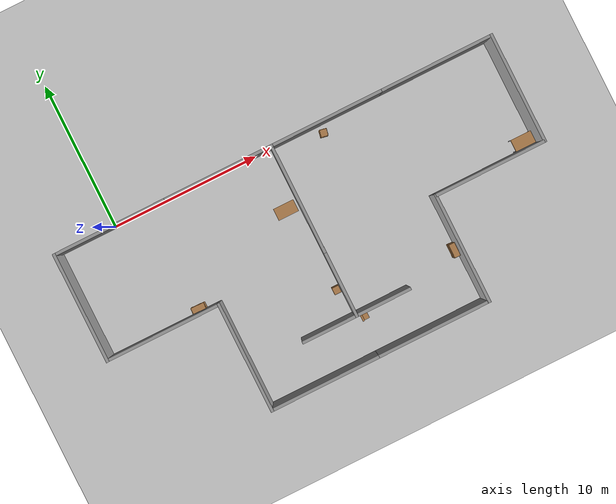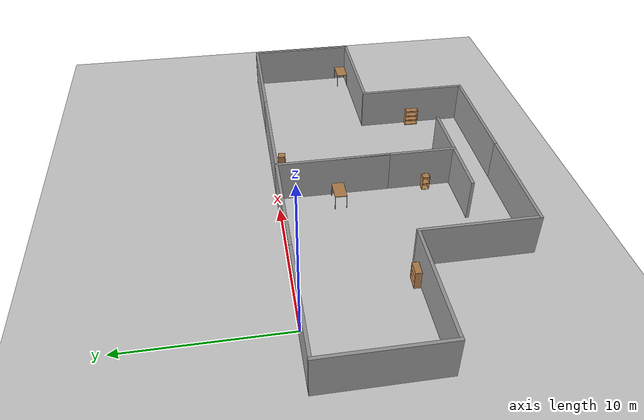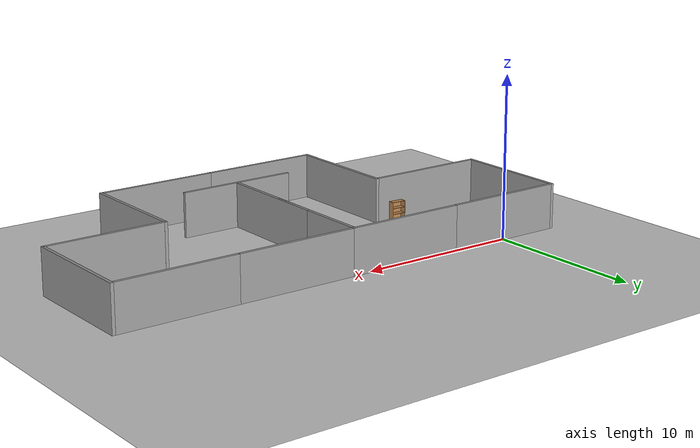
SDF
<sdf version="1.6">
 <world name="default">
  <light name="sun" type="directional">
   <pose>0 0 10 0 -0 0</pose>
   <diffuse>0.8 0.8 0.8 1</diffuse>
   <specular>0.1 0.1 0.1 1</specular>
   <attenuation>
    <range>1000</range>
    <constant>0.9</constant>
    <linear>0.01</linear>
    <quadratic>0.001</quadratic>
   </attenuation>
   <direction>-0.5 0.5 -1</direction>
  </light>
  <model name="ground_plane">
   <static>1</static>
   <link name="link">
    <collision name="collision">
     <geometry><plane><normal>0 0 1</normal><size>100 100</size></plane></geometry>
     <surface><friction><ode><mu>100</mu><mu2>50</mu2></ode></friction></surface>
    </collision>
    <visual name="visual">
     <cast_shadows>0</cast_shadows>
     <geometry><plane><normal>0 0 1</normal><size>100 100</size></plane></geometry>
     <material>
      <script><uri>file://media/materials/scripts/gazebo.material</uri><name>Gazebo/Grey</name></script>
     </material>
    </visual>
   </link>
  </model>
  <gravity>0 0 -9.8</gravity>
  <magnetic_field>6e-06 2.3e-05 -4.2e-05</magnetic_field>
  <atmosphere type="adiabatic"/>
  <physics name="default_physics" default="0" type="ode">
   <max_step_size>0.001</max_step_size>
   <real_time_factor>1</real_time_factor>
   <real_time_update_rate>1000</real_time_update_rate>
  </physics>
  <scene><ambient>0.4 0.4 0.4 1</ambient><background>0.7 0.7 0.7 1</background><shadows>1</shadows></scene>
  <spherical_coordinates>
   <surface_model>EARTH_WGS84</surface_model>
   <latitude_deg>0</latitude_deg>
   <longitude_deg>0</longitude_deg>
   <elevation>0</elevation>
   <heading_deg>0</heading_deg>
  </spherical_coordinates>
  <model name="grey_wall">
   <static>1</static>
   <link name="link">
    <pose>0 0 1.4 0 -0 0</pose>
    <collision name="collision"><geometry><box><size>7.5 0.2 2.8</size></box></geometry></collision>
    <visual name="visual">
     <cast_shadows>0</cast_shadows>
     <geometry><box><size>7.5 0.2 2.8</size></box></geometry>
     <material>
      <script>
       <uri>model://grey_wall/materials/scripts</uri>
       <uri>model://grey_wall/materials/textures</uri>
       <name>vrc/grey_wall</name>
      </script>
     </material>
    </visual>
   </link>
  </model>
  <model name="grey_wall_0">
   <static>1</static>
   <link name="link">
    <pose>0 0 1.4 0 -0 0</pose>
    <collision name="collision"><geometry><box><size>7.5 0.2 2.8</size></box></geometry></collision>
    <visual name="visual">
     <cast_shadows>0</cast_shadows>
     <geometry><box><size>7.5 0.2 2.8</size></box></geometry>
     <material>
      <script>
       <uri>model://grey_wall/materials/scripts</uri>
       <uri>model://grey_wall/materials/textures</uri>
       <name>vrc/grey_wall_tile</name>
      </script>
     </material>
    </visual>
   </link>
   <pose>-3.85002 -3.65 0 0 0 -1.57079</pose>
  </model>
  <model name="grey_wall_1">
   <static>1</static>
   <link name="link">
    <pose>0 0 1.4 0 -0 0</pose>
    <collision name="collision"><geometry><box><size>7.5 0.2 2.8</size></box></geometry></collision>
    <visual name="visual">
     <cast_shadows>0</cast_shadows>
     <geometry><box><size>7.5 0.2 2.8</size></box></geometry>
     <material>
      <script>
       <uri>model://grey_wall/materials/scripts</uri>
       <uri>model://grey_wall/materials/textures</uri>
       <name>vrc/grey_wall_square</name>
      </script>
     </material>
    </visual>
   </link>
   <pose>0 -7.3 0 0 -0 0</pose>
  </model>
  <model name="grey_wall_2">
   <static>1</static>
   <link name="link">
    <pose>0 0 1.4 0 -0 0</pose>
    <collision name="collision"><geometry><box><size>7.5 0.2 2.8</size></box></geometry></collision>
    <visual name="visual">
     <cast_shadows>0</cast_shadows>
     <geometry><box><size>7.5 0.2 2.8</size></box></geometry>
     <material>
      <script>
       <uri>model://grey_wall/materials/scripts</uri>
       <uri>model://grey_wall/materials/textures</uri>
       <name>vrc/grey_wall_triangle</name>
      </script>
     </material>
    </visual>
   </link>
   <pose>7.5 0 0 0 -0 0</pose>
  </model>
  <model name="grey_wall_2_clone">
   <static>1</static>
   <link name="link">
    <pose>0 0 1.4 0 -0 0</pose>
    <collision name="collision"><geometry><box><size>7.5 0.2 2.8</size></box></geometry></collision>
    <visual name="visual">
     <cast_shadows>0</cast_shadows>
     <geometry><box><size>7.5 0.2 2.8</size></box></geometry>
     <material>
      <script>
       <uri>model://grey_wall/materials/scripts</uri>
       <uri>model://grey_wall/materials/textures</uri>
       <name>vrc/grey_wall_tile</name>
      </script>
     </material>
    </visual>
   </link>
   <pose>3.85002 -10.95 0 0 -0 1.57079</pose>
  </model>
  <model name="grey_wall_4">
   <static>1</static>
   <link name="link">
    <pose>0 0 1.4 0 -0 0</pose>
    <collision name="collision"><geometry><box><size>7.5 0.2 2.8</size></box></geometry></collision>
    <visual name="visual">
     <cast_shadows>0</cast_shadows>
     <geometry><box><size>7.5 0.2 2.8</size></box></geometry>
     <material>
      <script>
       <uri>model://grey_wall/materials/scripts</uri>
       <uri>model://grey_wall/materials/textures</uri>
       <name>vrc/grey_wall_design</name>
      </script>
     </material>
    </visual>
   </link>
   <pose>7.5 -14.6 0 0 -0 0</pose>
  </model>
  <model name="grey_wall_5">
   <static>1</static>
   <link name="link">
    <pose>0 0 1.4 0 -0 0</pose>
    <collision name="collision"><geometry><box><size>7.5 0.2 2.8</size></box></geometry></collision>
    <visual name="visual">
     <cast_shadows>0</cast_shadows>
     <geometry><box><size>7.5 0.2 2.8</size></box></geometry>
     <material>
      <script>
       <uri>model://grey_wall/materials/scripts</uri>
       <uri>model://grey_wall/materials/textures</uri>
       <name>vrc/grey_wall</name>
      </script>
     </material>
    </visual>
   </link>
   <pose>15 -14.6 0 0 -0 0</pose>
  </model>
  <model name="grey_wall_6">
   <static>1</static>
   <link name="link">
    <pose>0 0 1.4 0 -0 0</pose>
    <collision name="collision"><geometry><box><size>7.5 0.2 2.8</size></box></geometry></collision>
    <visual name="visual">
     <cast_shadows>0</cast_shadows>
     <geometry><box><size>7.5 0.2 2.8</size></box></geometry>
     <material>
      <script>
       <uri>model://grey_wall/materials/scripts</uri>
       <uri>model://grey_wall/materials/textures</uri>
       <name>vrc/grey_wall</name>
      </script>
     </material>
    </visual>
   </link>
   <pose>11.1458 -3.65011 0 0 -0 1.57079</pose>
  </model>
  <model name="grey_wall_7">
   <static>1</static>
   <link name="link">
    <pose>0 0 1.4 0 -0 0</pose>
    <collision name="collision"><geometry><box><size>7.5 0.2 2.8</size></box></geometry></collision>
    <visual name="visual">
     <cast_shadows>0</cast_shadows>
     <geometry><box><size>7.5 0.2 2.8</size></box></geometry>
     <material>
      <script>
       <uri>model://grey_wall/materials/scripts</uri>
       <uri>model://grey_wall/materials/textures</uri>
       <name>vrc/grey_wall_tile</name>
      </script>
     </material>
    </visual>
   </link>
   <pose>15 0 0 0 -0 0</pose>
  </model>
  <model name="grey_wall_5_clone">
   <static>1</static>
   <link name="link">
    <pose>0 0 1.4 0 -0 0</pose>
    <collision name="collision"><geometry><box><size>7.5 0.2 2.8</size></box></geometry></collision>
    <visual name="visual">
     <cast_shadows>0</cast_shadows>
     <geometry><box><size>7.5 0.2 2.8</size></box></geometry>
     <material>
      <script>
       <uri>model://grey_wall/materials/scripts</uri>
       <uri>model://grey_wall/materials/textures</uri>
       <name>vrc/grey_wall_stone</name>
      </script>
     </material>
    </visual>
   </link>
   <pose>22.606 -7.30022 0 0 -0 0</pose>
  </model>
  <model name="grey_wall_5_clone_clone">
   <static>1</static>
   <link name="link">
    <pose>0 0 1.4 0 -0 0</pose>
    <collision name="collision"><geometry><box><size>7.5 0.2 2.8</size></box></geometry></collision>
    <visual name="visual">
     <cast_shadows>0</cast_shadows>
     <geometry><box><size>7.5 0.2 2.8</size></box></geometry>
     <material>
      <script>
       <uri>model://grey_wall/materials/scripts</uri>
       <uri>model://grey_wall/materials/textures</uri>
       <name>vrc/grey_wall_triangle</name>
      </script>
     </material>
    </visual>
   </link>
   <pose>22.5 0 0 0 -0 0</pose>
  </model>
  <model name="grey_wall_6_clone">
   <static>1</static>
   <link name="link">
    <pose>0 0 1.4 0 -0 0</pose>
    <collision name="collision"><geometry><box><size>7.5 0.2 2.8</size></box></geometry></collision>
    <visual name="visual">
     <cast_shadows>0</cast_shadows>
     <geometry><box><size>7.5 0.2 2.8</size></box></geometry>
     <material>
      <script>
       <uri>model://grey_wall/materials/scripts</uri>
       <uri>model://grey_wall/materials/textures</uri>
       <name>vrc/grey_wall_square</name>
      </script>
     </material>
    </visual>
   </link>
   <pose>18.8542 -10.9499 0 0 -0 1.57191</pose>
  </model>
  <model name="grey_wall_6_clone_0">
   <static>1</static>
   <link name="link">
    <pose>0 0 1.4 0 -0 0</pose>
    <collision name="collision"><geometry><box><size>7.5 0.2 2.8</size></box></geometry></collision>
    <visual name="visual">
     <cast_shadows>0</cast_shadows>
     <geometry><box><size>7.5 0.2 2.8</size></box></geometry>
     <material>
      <script>
       <uri>model://grey_wall/materials/scripts</uri>
       <uri>model://grey_wall/materials/textures</uri>
       <name>vrc/grey_wall_design</name>
      </script>
     </material>
    </visual>
   </link>
   <pose>26.3542 -3.65011 0 0 -0 1.57191</pose>
  </model>
  <model name="grey_wall_6_clone_0_clone">
   <static>1</static>
   <link name="link">
    <pose>0 0 1.4 0 -0 0</pose>
    <collision name="collision"><geometry><box><size>7.5 0.2 2.8</size></box></geometry></collision>
    <visual name="visual">
     <cast_shadows>0</cast_shadows>
     <geometry><box><size>7.5 0.2 2.8</size></box></geometry>
     <material>
      <script>
       <uri>model://grey_wall/materials/scripts</uri>
       <uri>model://grey_wall/materials/textures</uri>
       <name>vrc/grey_wall</name>
      </script>
     </material>
    </visual>
   </link>
   <pose>11.1458 -8.07245 0 0 -0 1.57079</pose>
  </model>
  <model name="grey_wall_5_clone_0">
   <static>1</static>
   <link name="link">
    <pose>0 0 1.4 0 -0 0</pose>
    <collision name="collision"><geometry><box><size>7.5 0.2 2.8</size></box></geometry></collision>
    <visual name="visual">
     <cast_shadows>0</cast_shadows>
     <geometry><box><size>7.5 0.2 2.8</size></box></geometry>
     <material>
      <script>
       <uri>model://grey_wall/materials/scripts</uri>
       <uri>model://grey_wall/materials/textures</uri>
       <name>vrc/grey_wall_tile</name>
      </script>
     </material>
    </visual>
   </link>
   <pose>11.1458 -11.7225 0 0 -0 0</pose>
  </model>
  <model name="cabinet">
   <static>1</static>
   <link name="cabinet_bottom_plate">
    <inertial>
     <pose>0 0 -1 0 -0 0</pose>
     <inertia><ixx>2.05</ixx><ixy>0</ixy><ixz>0</ixz><iyy>2.05</iyy><iyz>0</iyz><izz>2.05</izz></inertia>
     <mass>25</mass>
    </inertial>
    <collision name="cabinet_bottom_plate_geom">
     <pose>0 0 0.01 0 -0 0</pose>
     <geometry><box><size>0.45 0.45 0.02</size></box></geometry>
    </collision>
    <visual name="cabinet_bottom_plate_geom_visual">
     <pose>0 0 0.01 0 -0 0</pose>
     <geometry><box><size>0.45 0.45 0.02</size></box></geometry>
     <material>
      <script><uri>file://media/materials/scripts/gazebo.material</uri><name>Gazebo/Wood</name></script>
     </material>
    </visual>
    <collision name="cabinet_bottom_plate_geom_cabinet_back_plate">
     <pose>0.235 0 0.51 0 -0 0</pose>
     <geometry><box><size>0.02 0.45 1.02</size></box></geometry>
    </collision>
    <visual name="cabinet_bottom_plate_geom_cabinet_back_plate_visual">
     <pose>0.235 0 0.51 0 -0 0</pose>
     <geometry><box><size>0.02 0.45 1.02</size></box></geometry>
     <material>
      <script><uri>file://media/materials/scripts/gazebo.material</uri><name>Gazebo/Wood</name></script>
     </material>
    </visual>
    <collision name="cabinet_bottom_plate_geom_cabinet_left_plate">
     <pose>0 0.235 0.51 0 -0 0</pose>
     <geometry><box><size>0.45 0.02 1.02</size></box></geometry>
    </collision>
    <visual name="cabinet_bottom_plate_geom_cabinet_left_plate_visual">
     <pose>0 0.235 0.51 0 -0 0</pose>
     <geometry><box><size>0.45 0.02 1.02</size></box></geometry>
     <material>
      <script><uri>file://media/materials/scripts/gazebo.material</uri><name>Gazebo/Wood</name></script>
     </material>
    </visual>
    <collision name="cabinet_bottom_plate_geom_cabinet_middle_plate">
     <pose>0 0 0.51 0 -0 0</pose>
     <geometry><box><size>0.45 0.45 0.02</size></box></geometry>
    </collision>
    <visual name="cabinet_bottom_plate_geom_cabinet_middle_plate_visual">
     <pose>0 0 0.51 0 -0 0</pose>
     <geometry><box><size>0.45 0.45 0.02</size></box></geometry>
     <material>
      <script><uri>file://media/materials/scripts/gazebo.material</uri><name>Gazebo/Wood</name></script>
     </material>
    </visual>
    <collision name="cabinet_bottom_plate_geom_cabinet_right_plate">
     <pose>0 -0.235 0.51 0 -0 0</pose>
     <geometry><box><size>0.45 0.02 1.02</size></box></geometry>
    </collision>
    <visual name="cabinet_bottom_plate_geom_cabinet_right_plate_visual">
     <pose>0 -0.235 0.51 0 -0 0</pose>
     <geometry><box><size>0.45 0.02 1.02</size></box></geometry>
     <material>
      <script><uri>file://media/materials/scripts/gazebo.material</uri><name>Gazebo/Wood</name></script>
     </material>
    </visual>
    <collision name="cabinet_bottom_plate_geom_cabinet_top_plate">
     <pose>0 0 1.01 0 -0 0</pose>
     <geometry><box><size>0.45 0.45 0.02</size></box></geometry>
    </collision>
    <visual name="cabinet_bottom_plate_geom_cabinet_top_plate_visual">
     <pose>0 0 1.01 0 -0 0</pose>
     <geometry><box><size>0.45 0.45 0.02</size></box></geometry>
     <material>
      <script><uri>file://media/materials/scripts/gazebo.material</uri><name>Gazebo/Wood</name></script>
     </material>
    </visual>
   </link>
   <pose>10.7739 -9.86714 0 0 -0 0</pose>
  </model>
  <model name="bookshelf">
   <static>1</static>
   <link name="link">
    <inertial><mass>1</mass></inertial>
    <collision name="back">
     <pose>0 0.005 0.6 0 -0 0</pose>
     <geometry><box><size>0.9 0.01 1.2</size></box></geometry>
    </collision>
    <visual name="visual1">
     <pose>0 0.005 0.6 0 -0 0</pose>
     <geometry><box><size>0.9 0.01 1.2</size></box></geometry>
     <material>
      <script><uri>file://media/materials/scripts/gazebo.material</uri><name>Gazebo/Wood</name></script>
     </material>
    </visual>
    <collision name="left_side">
     <pose>0.45 -0.195 0.6 0 -0 0</pose>
     <geometry><box><size>0.02 0.4 1.2</size></box></geometry>
    </collision>
    <visual name="visual2">
     <pose>0.45 -0.195 0.6 0 -0 0</pose>
     <geometry><box><size>0.02 0.4 1.2</size></box></geometry>
     <material>
      <script><uri>file://media/materials/scripts/gazebo.material</uri><name>Gazebo/Wood</name></script>
     </material>
    </visual>
    <collision name="right_side">
     <pose>-0.45 -0.195 0.6 0 -0 0</pose>
     <geometry><box><size>0.02 0.4 1.2</size></box></geometry>
    </collision>
    <visual name="visual3">
     <pose>-0.45 -0.195 0.6 0 -0 0</pose>
     <geometry><box><size>0.02 0.4 1.2</size></box></geometry>
     <material>
      <script><uri>file://media/materials/scripts/gazebo.material</uri><name>Gazebo/Wood</name></script>
     </material>
    </visual>
    <collision name="bottom">
     <pose>0 -0.195 0.03 0 -0 0</pose>
     <geometry><box><size>0.88 0.4 0.06</size></box></geometry>
    </collision>
    <visual name="visual4">
     <pose>0 -0.195 0.03 0 -0 0</pose>
     <geometry><box><size>0.88 0.4 0.06</size></box></geometry>
     <material>
      <script><uri>file://media/materials/scripts/gazebo.material</uri><name>Gazebo/Wood</name></script>
     </material>
    </visual>
    <collision name="top">
     <pose>0 -0.195 1.19 0 -0 0</pose>
     <geometry><box><size>0.88 0.4 0.02</size></box></geometry>
    </collision>
    <visual name="visual5">
     <pose>0 -0.195 1.19 0 -0 0</pose>
     <geometry><box><size>0.88 0.4 0.02</size></box></geometry>
     <material>
      <script><uri>file://media/materials/scripts/gazebo.material</uri><name>Gazebo/Wood</name></script>
     </material>
    </visual>
    <collision name="low_shelf">
     <pose>0 -0.195 0.43 0 -0 0</pose>
     <geometry><box><size>0.88 0.4 0.02</size></box></geometry>
    </collision>
    <visual name="visual6">
     <pose>0 -0.195 0.43 0 -0 0</pose>
     <geometry><box><size>0.88 0.4 0.02</size></box></geometry>
     <material>
      <script><uri>file://media/materials/scripts/gazebo.material</uri><name>Gazebo/Wood</name></script>
     </material>
    </visual>
    <collision name="high_shelf">
     <pose>0 -0.195 0.8 0 -0 0</pose>
     <geometry><box><size>0.88 0.4 0.02</size></box></geometry>
    </collision>
    <visual name="visual7">
     <pose>0 -0.195 0.8 0 -0 0</pose>
     <geometry><box><size>0.88 0.4 0.02</size></box></geometry>
     <material>
      <script><uri>file://media/materials/scripts/gazebo.material</uri><name>Gazebo/Wood</name></script>
     </material>
    </visual>
   </link>
   <pose>18.7309 -10.9537 0 0 0 -1.59064</pose>
  </model>
  <model name="table">
   <static>0</static>
   <link name="link">
    <collision name="surface">
     <pose>0 0 1 0 -0 0</pose>
     <geometry><box><size>1.5 0.8 0.03</size></box></geometry>
     <surface><friction><ode><mu>0.6</mu><mu2>0.6</mu2></ode></friction></surface>
    </collision>
    <visual name="visual1">
     <pose>0 0 1 0 -0 0</pose>
     <geometry><box><size>1.4 0.8 0.04</size></box></geometry>
     <material>
      <script><uri>file://media/materials/scripts/gazebo.material</uri><name>Gazebo/Wood</name></script>
     </material>
    </visual>
    <collision name="front_left_leg">
     <pose>0.68 0.38 0.5 0 -0 0</pose>
     <geometry><cylinder><radius>0.02</radius><length>1</length></cylinder></geometry>
    </collision>
    <visual name="front_left_leg">
     <pose>0.68 0.38 0.5 0 -0 0</pose>
     <geometry><cylinder><radius>0.02</radius><length>1</length></cylinder></geometry>
     <material>
      <script><uri>file://media/materials/scripts/gazebo.material</uri><name>Gazebo/Grey</name></script>
     </material>
    </visual>
    <collision name="front_right_leg">
     <pose>0.68 -0.38 0.5 0 -0 0</pose>
     <geometry><cylinder><radius>0.02</radius><length>1</length></cylinder></geometry>
    </collision>
    <visual name="front_right_leg">
     <pose>0.68 -0.38 0.5 0 -0 0</pose>
     <geometry><cylinder><radius>0.02</radius><length>1</length></cylinder></geometry>
     <material>
      <script><uri>file://media/materials/scripts/gazebo.material</uri><name>Gazebo/Grey</name></script>
     </material>
    </visual>
    <collision name="back_right_leg">
     <pose>-0.68 -0.38 0.5 0 -0 0</pose>
     <geometry><cylinder><radius>0.02</radius><length>1</length></cylinder></geometry>
    </collision>
    <visual name="back_right_leg">
     <pose>-0.68 -0.38 0.5 0 -0 0</pose>
     <geometry><cylinder><radius>0.02</radius><length>1</length></cylinder></geometry>
     <material>
      <script><uri>file://media/materials/scripts/gazebo.material</uri><name>Gazebo/Grey</name></script>
     </material>
    </visual>
    <collision name="back_left_leg">
     <pose>-0.68 0.38 0.5 0 -0 0</pose>
     <geometry><cylinder><radius>0.02</radius><length>1</length></cylinder></geometry>
    </collision>
    <visual name="back_left_leg">
     <pose>-0.68 0.38 0.5 0 -0 0</pose>
     <geometry><cylinder><radius>0.02</radius><length>1</length></cylinder></geometry>
     <material>
      <script><uri>file://media/materials/scripts/gazebo.material</uri><name>Gazebo/Grey</name></script>
     </material>
    </visual>
    <inertial>
     <inertia><ixx>1</ixx><ixy>0</ixy><ixz>0</ixz><iyy>1</iyy><iyz>0</iyz><izz>1</izz></inertia>
     <mass>1</mass>
    </inertial>
   </link>
   <pose>25.5169 -6.76524 0.006526 -0 -0.009323 0.001114</pose>
  </model>
  <model name="cabinet_0">
   <static>1</static>
   <link name="cabinet_bottom_plate">
    <inertial>
     <pose>0 0 -1 0 -0 0</pose>
     <inertia><ixx>2.05</ixx><ixy>0</ixy><ixz>0</ixz><iyy>2.05</iyy><iyz>0</iyz><izz>2.05</izz></inertia>
     <mass>25</mass>
    </inertial>
    <collision name="cabinet_bottom_plate_geom">
     <pose>0 0 0.01 0 -0 0</pose>
     <geometry><box><size>0.45 0.45 0.02</size></box></geometry>
    </collision>
    <visual name="cabinet_bottom_plate_geom_visual">
     <pose>0 0 0.01 0 -0 0</pose>
     <geometry><box><size>0.45 0.45 0.02</size></box></geometry>
     <material>
      <script><uri>file://media/materials/scripts/gazebo.material</uri><name>Gazebo/Wood</name></script>
     </material>
    </visual>
    <collision name="cabinet_bottom_plate_geom_cabinet_back_plate">
     <pose>0.235 0 0.51 0 -0 0</pose>
     <geometry><box><size>0.02 0.45 1.02</size></box></geometry>
    </collision>
    <visual name="cabinet_bottom_plate_geom_cabinet_back_plate_visual">
     <pose>0.235 0 0.51 0 -0 0</pose>
     <geometry><box><size>0.02 0.45 1.02</size></box></geometry>
     <material>
      <script><uri>file://media/materials/scripts/gazebo.material</uri><name>Gazebo/Wood</name></script>
     </material>
    </visual>
    <collision name="cabinet_bottom_plate_geom_cabinet_left_plate">
     <pose>0 0.235 0.51 0 -0 0</pose>
     <geometry><box><size>0.45 0.02 1.02</size></box></geometry>
    </collision>
    <visual name="cabinet_bottom_plate_geom_cabinet_left_plate_visual">
     <pose>0 0.235 0.51 0 -0 0</pose>
     <geometry><box><size>0.45 0.02 1.02</size></box></geometry>
     <material>
      <script><uri>file://media/materials/scripts/gazebo.material</uri><name>Gazebo/Wood</name></script>
     </material>
    </visual>
    <collision name="cabinet_bottom_plate_geom_cabinet_middle_plate">
     <pose>0 0 0.51 0 -0 0</pose>
     <geometry><box><size>0.45 0.45 0.02</size></box></geometry>
    </collision>
    <visual name="cabinet_bottom_plate_geom_cabinet_middle_plate_visual">
     <pose>0 0 0.51 0 -0 0</pose>
     <geometry><box><size>0.45 0.45 0.02</size></box></geometry>
     <material>
      <script><uri>file://media/materials/scripts/gazebo.material</uri><name>Gazebo/Wood</name></script>
     </material>
    </visual>
    <collision name="cabinet_bottom_plate_geom_cabinet_right_plate">
     <pose>0 -0.235 0.51 0 -0 0</pose>
     <geometry><box><size>0.45 0.02 1.02</size></box></geometry>
    </collision>
    <visual name="cabinet_bottom_plate_geom_cabinet_right_plate_visual">
     <pose>0 -0.235 0.51 0 -0 0</pose>
     <geometry><box><size>0.45 0.02 1.02</size></box></geometry>
     <material>
      <script><uri>file://media/materials/scripts/gazebo.material</uri><name>Gazebo/Wood</name></script>
     </material>
    </visual>
    <collision name="cabinet_bottom_plate_geom_cabinet_top_plate">
     <pose>0 0 1.01 0 -0 0</pose>
     <geometry><box><size>0.45 0.45 0.02</size></box></geometry>
    </collision>
    <visual name="cabinet_bottom_plate_geom_cabinet_top_plate_visual">
     <pose>0 0 1.01 0 -0 0</pose>
     <geometry><box><size>0.45 0.45 0.02</size></box></geometry>
     <material>
      <script><uri>file://media/materials/scripts/gazebo.material</uri><name>Gazebo/Wood</name></script>
     </material>
    </visual>
   </link>
   <pose>14.5023 -0.641824 0 0 -0 1.37831</pose>
  </model>
  <model name="bookshelf_clone">
   <static>1</static>
   <link name="link">
    <inertial><mass>1</mass></inertial>
    <collision name="back">
     <pose>0 0.005 0.6 0 -0 0</pose>
     <geometry><box><size>0.9 0.01 1.2</size></box></geometry>
    </collision>
    <visual name="visual1">
     <pose>0 0.005 0.6 0 -0 0</pose>
     <geometry><box><size>0.9 0.01 1.2</size></box></geometry>
     <material>
      <script><uri>file://media/materials/scripts/gazebo.material</uri><name>Gazebo/Wood</name></script>
     </material>
    </visual>
    <collision name="left_side">
     <pose>0.45 -0.195 0.6 0 -0 0</pose>
     <geometry><box><size>0.02 0.4 1.2</size></box></geometry>
    </collision>
    <visual name="visual2">
     <pose>0.45 -0.195 0.6 0 -0 0</pose>
     <geometry><box><size>0.02 0.4 1.2</size></box></geometry>
     <material>
      <script><uri>file://media/materials/scripts/gazebo.material</uri><name>Gazebo/Wood</name></script>
     </material>
    </visual>
    <collision name="right_side">
     <pose>-0.45 -0.195 0.6 0 -0 0</pose>
     <geometry><box><size>0.02 0.4 1.2</size></box></geometry>
    </collision>
    <visual name="visual3">
     <pose>-0.45 -0.195 0.6 0 -0 0</pose>
     <geometry><box><size>0.02 0.4 1.2</size></box></geometry>
     <material>
      <script><uri>file://media/materials/scripts/gazebo.material</uri><name>Gazebo/Wood</name></script>
     </material>
    </visual>
    <collision name="bottom">
     <pose>0 -0.195 0.03 0 -0 0</pose>
     <geometry><box><size>0.88 0.4 0.06</size></box></geometry>
    </collision>
    <visual name="visual4">
     <pose>0 -0.195 0.03 0 -0 0</pose>
     <geometry><box><size>0.88 0.4 0.06</size></box></geometry>
     <material>
      <script><uri>file://media/materials/scripts/gazebo.material</uri><name>Gazebo/Wood</name></script>
     </material>
    </visual>
    <collision name="top">
     <pose>0 -0.195 1.19 0 -0 0</pose>
     <geometry><box><size>0.88 0.4 0.02</size></box></geometry>
    </collision>
    <visual name="visual5">
     <pose>0 -0.195 1.19 0 -0 0</pose>
     <geometry><box><size>0.88 0.4 0.02</size></box></geometry>
     <material>
      <script><uri>file://media/materials/scripts/gazebo.material</uri><name>Gazebo/Wood</name></script>
     </material>
    </visual>
    <collision name="low_shelf">
     <pose>0 -0.195 0.43 0 -0 0</pose>
     <geometry><box><size>0.88 0.4 0.02</size></box></geometry>
    </collision>
    <visual name="visual6">
     <pose>0 -0.195 0.43 0 -0 0</pose>
     <geometry><box><size>0.88 0.4 0.02</size></box></geometry>
     <material>
      <script><uri>file://media/materials/scripts/gazebo.material</uri><name>Gazebo/Wood</name></script>
     </material>
    </visual>
    <collision name="high_shelf">
     <pose>0 -0.195 0.8 0 -0 0</pose>
     <geometry><box><size>0.88 0.4 0.02</size></box></geometry>
    </collision>
    <visual name="visual7">
     <pose>0 -0.195 0.8 0 -0 0</pose>
     <geometry><box><size>0.88 0.4 0.02</size></box></geometry>
     <material>
      <script><uri>file://media/materials/scripts/gazebo.material</uri><name>Gazebo/Wood</name></script>
     </material>
    </visual>
   </link>
   <pose>2.47351 -7.17558 0 0 -0 3.11023</pose>
  </model>
  <model name="wooden_case">
   <link name="base">
    <pose>0 0 0.024 0 -0 0</pose>
    <inertial>
     <pose>-0.022184 0 0.171592 0 -0 0</pose>
     <mass>3.96264</mass>
     <inertia>
      <ixx>0.213536</ixx>
      <ixy>0</ixy>
      <ixz>0.000779377</ixz>
      <iyy>0.0708943</iyy>
      <iyz>0</iyz>
      <izz>0.154604</izz>
     </inertia>
    </inertial>
    <collision name="collision_back">
     <pose>-0.053975 0 0.1778 0 -0 0</pose>
     <geometry><box><size>0.01905 0.5461 0.3175</size></box></geometry>
     <surface>
      <contact>
       <poissons_ratio>0.347</poissons_ratio>
       <elastic_modulus>8.8e+09</elastic_modulus>
       <ode><kp>100000</kp><kd>100</kd><max_vel>100</max_vel><min_depth>0.001</min_depth></ode>
      </contact>
      <friction>
       <torsional>
        <coefficient>1</coefficient>
        <use_patch_radius>0</use_patch_radius>
        <surface_radius>0.01</surface_radius>
       </torsional>
      </friction>
     </surface>
    </collision>
    <visual name="visual_back">
     <pose>-0.053975 0 0.1778 0 -0 0</pose>
     <geometry><box><size>0.01905 0.5461 0.3175</size></box></geometry>
     <material>
      <script><uri>file://media/materials/scripts/gazebo.material</uri><name>Gazebo/Wood</name></script>
     </material>
    </visual>
    <collision name="collision_bottom">
     <pose>0 0 0.009525 0 -0 0</pose>
     <geometry><box><size>0.127 0.5842 0.01905</size></box></geometry>
     <surface>
      <contact>
       <poissons_ratio>0.347</poissons_ratio>
       <elastic_modulus>8.8e+09</elastic_modulus>
       <ode><kp>100000</kp><kd>100</kd><max_vel>100</max_vel><min_depth>0.001</min_depth></ode>
      </contact>
      <friction>
       <torsional>
        <coefficient>1</coefficient>
        <use_patch_radius>0</use_patch_radius>
        <surface_radius>0.01</surface_radius>
       </torsional>
      </friction>
     </surface>
    </collision>
    <visual name="visual_bottom">
     <pose>0 0 0.009525 0 -0 0</pose>
     <geometry><box><size>0.127 0.5842 0.01905</size></box></geometry>
     <material>
      <script><uri>file://media/materials/scripts/gazebo.material</uri><name>Gazebo/Wood</name></script>
     </material>
    </visual>
    <collision name="collision_top">
     <pose>0 0 0.346075 0 -0 0</pose>
     <geometry><box><size>0.127 0.5842 0.01905</size></box></geometry>
     <surface>
      <contact>
       <poissons_ratio>0.347</poissons_ratio>
       <elastic_modulus>8.8e+09</elastic_modulus>
       <ode><kp>100000</kp><kd>100</kd><max_vel>100</max_vel><min_depth>0.001</min_depth></ode>
      </contact>
      <friction>
       <torsional>
        <coefficient>1</coefficient>
        <use_patch_radius>0</use_patch_radius>
        <surface_radius>0.01</surface_radius>
       </torsional>
      </friction>
     </surface>
    </collision>
    <visual name="visual_top">
     <pose>0 0 0.346075 0 -0 0</pose>
     <geometry><box><size>0.127 0.5842 0.01905</size></box></geometry>
     <material>
      <script><uri>file://media/materials/scripts/gazebo.material</uri><name>Gazebo/Wood</name></script>
     </material>
    </visual>
    <collision name="collision_left">
     <pose>0 -0.282575 0.1778 0 -0 0</pose>
     <geometry><box><size>0.127 0.01905 0.3175</size></box></geometry>
     <surface>
      <contact>
       <poissons_ratio>0.347</poissons_ratio>
       <elastic_modulus>8.8e+09</elastic_modulus>
       <ode><kp>100000</kp><kd>100</kd><max_vel>100</max_vel><min_depth>0.001</min_depth></ode>
      </contact>
      <friction>
       <torsional>
        <coefficient>1</coefficient>
        <use_patch_radius>0</use_patch_radius>
        <surface_radius>0.01</surface_radius>
       </torsional>
      </friction>
     </surface>
    </collision>
    <visual name="visual_left">
     <pose>0 -0.282575 0.1778 0 -0 0</pose>
     <geometry><box><size>0.127 0.01905 0.3175</size></box></geometry>
     <material>
      <script><uri>file://media/materials/scripts/gazebo.material</uri><name>Gazebo/Wood</name></script>
     </material>
    </visual>
    <collision name="collision_right">
     <pose>0 0.282575 0.1778 0 -0 0</pose>
     <geometry><box><size>0.127 0.01905 0.3175</size></box></geometry>
     <surface>
      <contact>
       <poissons_ratio>0.347</poissons_ratio>
       <elastic_modulus>8.8e+09</elastic_modulus>
       <ode><kp>100000</kp><kd>100</kd><max_vel>100</max_vel><min_depth>0.001</min_depth></ode>
      </contact>
      <friction>
       <torsional>
        <coefficient>1</coefficient>
        <use_patch_radius>0</use_patch_radius>
        <surface_radius>0.01</surface_radius>
       </torsional>
      </friction>
     </surface>
    </collision>
    <visual name="visual_right">
     <pose>0 0.282575 0.1778 0 -0 0</pose>
     <geometry><box><size>0.127 0.01905 0.3175</size></box></geometry>
     <material>
      <script><uri>file://media/materials/scripts/gazebo.material</uri><name>Gazebo/Wood</name></script>
     </material>
    </visual>
    <collision name="collision_block_left">
     <pose>0.0095 -0.2151 -0.012 0 -0 0</pose>
     <geometry><box><size>0.108 0.05 0.024</size></box></geometry>
     <surface>
      <contact>
       <poissons_ratio>0.347</poissons_ratio>
       <elastic_modulus>8.8e+09</elastic_modulus>
       <ode><kp>100000</kp><kd>100</kd><max_vel>100</max_vel><min_depth>0.001</min_depth></ode>
      </contact>
      <friction>
       <torsional>
        <coefficient>1</coefficient>
        <use_patch_radius>0</use_patch_radius>
        <surface_radius>0.01</surface_radius>
       </torsional>
      </friction>
     </surface>
    </collision>
    <visual name="visual_block_left">
     <pose>0.0095 -0.2151 -0.012 0 -0 0</pose>
     <geometry><box><size>0.108 0.05 0.024</size></box></geometry>
     <material>
      <script><uri>file://media/materials/scripts/gazebo.material</uri><name>Gazebo/Wood</name></script>
     </material>
    </visual>
    <collision name="collision_block_right">
     <pose>0.0095 0.2151 -0.012 0 -0 0</pose>
     <geometry><box><size>0.108 0.05 0.024</size></box></geometry>
     <surface>
      <contact>
       <poissons_ratio>0.347</poissons_ratio>
       <elastic_modulus>8.8e+09</elastic_modulus>
       <ode><kp>100000</kp><kd>100</kd><max_vel>100</max_vel><min_depth>0.001</min_depth></ode>
      </contact>
      <friction>
       <torsional>
        <coefficient>1</coefficient>
        <use_patch_radius>0</use_patch_radius>
        <surface_radius>0.01</surface_radius>
       </torsional>
      </friction>
     </surface>
    </collision>
    <visual name="visual_block_right">
     <pose>0.0095 0.2151 -0.012 0 -0 0</pose>
     <geometry><box><size>0.108 0.05 0.024</size></box></geometry>
     <material>
      <script><uri>file://media/materials/scripts/gazebo.material</uri><name>Gazebo/Wood</name></script>
     </material>
    </visual>
   </link>
   <link name="lid">
    <pose>0.243775 0 0.009525 0 -0 0</pose>
    <inertial>
     <mass>1.97874</mass>
     <inertia>
      <ixx>0.0563367</ixx>
      <ixy>0</ixy>
      <ixz>0</ixz>
      <iyy>0.020911</iyy>
      <iyz>0</iyz>
      <izz>0.0771281</izz>
     </inertia>
    </inertial>
    <collision name="collision">
     <geometry><box><size>0.3556 0.5842 0.01905</size></box></geometry>
     <surface>
      <contact>
       <poissons_ratio>0.347</poissons_ratio>
       <elastic_modulus>8.8e+09</elastic_modulus>
       <ode><kp>100000</kp><kd>100</kd><max_vel>100</max_vel><min_depth>0.001</min_depth></ode>
      </contact>
      <friction>
       <torsional>
        <coefficient>1</coefficient>
        <use_patch_radius>0</use_patch_radius>
        <surface_radius>0.01</surface_radius>
       </torsional>
      </friction>
     </surface>
    </collision>
    <visual name="visual">
     <geometry><box><size>0.3556 0.5842 0.01905</size></box></geometry>
     <material>
      <script><uri>file://media/materials/scripts/gazebo.material</uri><name>Gazebo/Wood</name></script>
     </material>
    </visual>
    <visual name="tee_nut_1">
     <pose>0.122 -0.216 0 0 -0 0</pose>
     <geometry><cylinder><radius>0.00635</radius><length>0.0192405</length></cylinder></geometry>
     <material>
      <script><uri>file://media/materials/scripts/gazebo.material</uri><name>Gazebo/Grey</name></script>
     </material>
    </visual>
    <visual name="tee_nut_2">
     <pose>0.122 -0.088 0 0 -0 0</pose>
     <geometry><cylinder><radius>0.00635</radius><length>0.0192405</length></cylinder></geometry>
     <material>
      <script><uri>file://media/materials/scripts/gazebo.material</uri><name>Gazebo/Grey</name></script>
     </material>
    </visual>
    <visual name="tee_nut_3">
     <pose>0.122 0.088 0 0 -0 0</pose>
     <geometry><cylinder><radius>0.00635</radius><length>0.0192405</length></cylinder></geometry>
     <material>
      <script><uri>file://media/materials/scripts/gazebo.material</uri><name>Gazebo/Grey</name></script>
     </material>
    </visual>
    <visual name="tee_nut_4">
     <pose>0.122 0.216 0 0 -0 0</pose>
     <geometry><cylinder><radius>0.00635</radius><length>0.0192405</length></cylinder></geometry>
     <material>
      <script><uri>file://media/materials/scripts/gazebo.material</uri><name>Gazebo/Grey</name></script>
     </material>
    </visual>
   </link>
   <joint name="lid_hinge" type="revolute">
    <pose>-0.1778 0 0.01905 0 -0 0</pose>
    <parent>base</parent>
    <child>lid</child>
    <axis>
     <xyz>0 1 0</xyz>
     <limit><upper>0.523599</upper><lower>-1.5708</lower></limit>
     <use_parent_model_frame>0</use_parent_model_frame>
     <dynamics><spring_reference>0</spring_reference><spring_stiffness>0</spring_stiffness></dynamics>
    </axis>
   </joint>
   <pose>11.4569 -12.1601 -0.001057 0 -0.000429 0</pose>
  </model>
  <model name="table_clone">
   <static>0</static>
   <link name="link">
    <collision name="surface">
     <pose>0 0 1 0 -0 0</pose>
     <geometry><box><size>1.5 0.8 0.03</size></box></geometry>
     <surface><friction><ode><mu>0.6</mu><mu2>0.6</mu2></ode></friction></surface>
    </collision>
    <visual name="visual1">
     <pose>0 0 1 0 -0 0</pose>
     <geometry><box><size>1.4 0.8 0.04</size></box></geometry>
     <material>
      <script><uri>file://media/materials/scripts/gazebo.material</uri><name>Gazebo/Wood</name></script>
     </material>
    </visual>
    <collision name="front_left_leg">
     <pose>0.68 0.38 0.5 0 -0 0</pose>
     <geometry><cylinder><radius>0.02</radius><length>1</length></cylinder></geometry>
    </collision>
    <visual name="front_left_leg">
     <pose>0.68 0.38 0.5 0 -0 0</pose>
     <geometry><cylinder><radius>0.02</radius><length>1</length></cylinder></geometry>
     <material>
      <script><uri>file://media/materials/scripts/gazebo.material</uri><name>Gazebo/Grey</name></script>
     </material>
    </visual>
    <collision name="front_right_leg">
     <pose>0.68 -0.38 0.5 0 -0 0</pose>
     <geometry><cylinder><radius>0.02</radius><length>1</length></cylinder></geometry>
    </collision>
    <visual name="front_right_leg">
     <pose>0.68 -0.38 0.5 0 -0 0</pose>
     <geometry><cylinder><radius>0.02</radius><length>1</length></cylinder></geometry>
     <material>
      <script><uri>file://media/materials/scripts/gazebo.material</uri><name>Gazebo/Grey</name></script>
     </material>
    </visual>
    <collision name="back_right_leg">
     <pose>-0.68 -0.38 0.5 0 -0 0</pose>
     <geometry><cylinder><radius>0.02</radius><length>1</length></cylinder></geometry>
    </collision>
    <visual name="back_right_leg">
     <pose>-0.68 -0.38 0.5 0 -0 0</pose>
     <geometry><cylinder><radius>0.02</radius><length>1</length></cylinder></geometry>
     <material>
      <script><uri>file://media/materials/scripts/gazebo.material</uri><name>Gazebo/Grey</name></script>
     </material>
    </visual>
    <collision name="back_left_leg">
     <pose>-0.68 0.38 0.5 0 -0 0</pose>
     <geometry><cylinder><radius>0.02</radius><length>1</length></cylinder></geometry>
    </collision>
    <visual name="back_left_leg">
     <pose>-0.68 0.38 0.5 0 -0 0</pose>
     <geometry><cylinder><radius>0.02</radius><length>1</length></cylinder></geometry>
     <material>
      <script><uri>file://media/materials/scripts/gazebo.material</uri><name>Gazebo/Grey</name></script>
     </material>
    </visual>
    <inertial>
     <inertia><ixx>1</ixx><ixy>0</ixy><ixz>0</ixz><iyy>1</iyy><iyz>0</iyz><izz>1</izz></inertia>
     <mass>1</mass>
    </inertial>
   </link>
   <pose>10.1886 -3.92441 -9e-06 1e-06 -1e-06 0.001043</pose>
  </model>
 </world>
</sdf>
